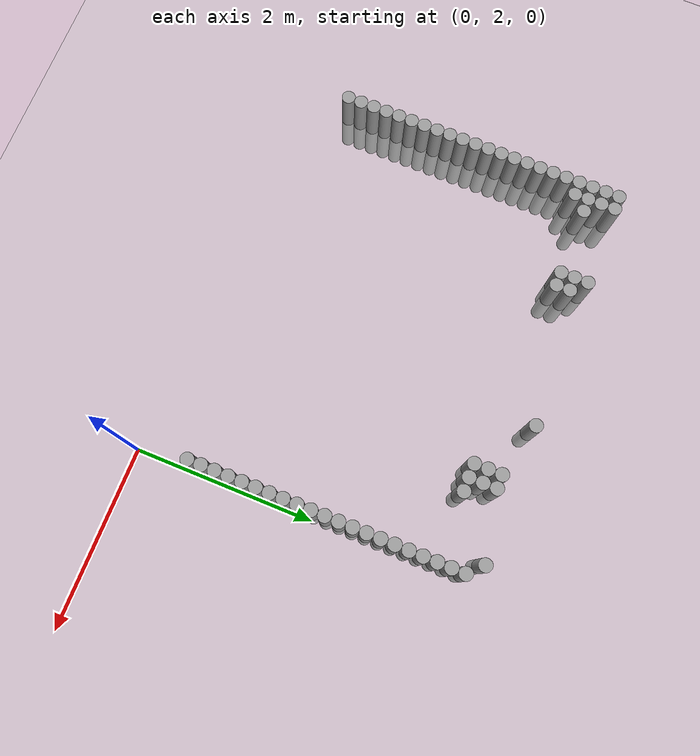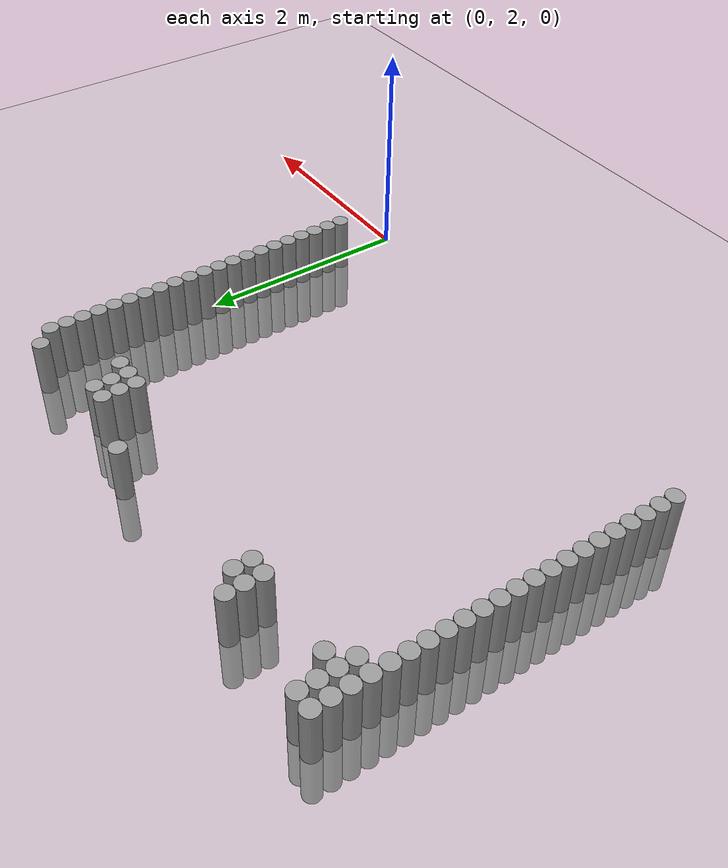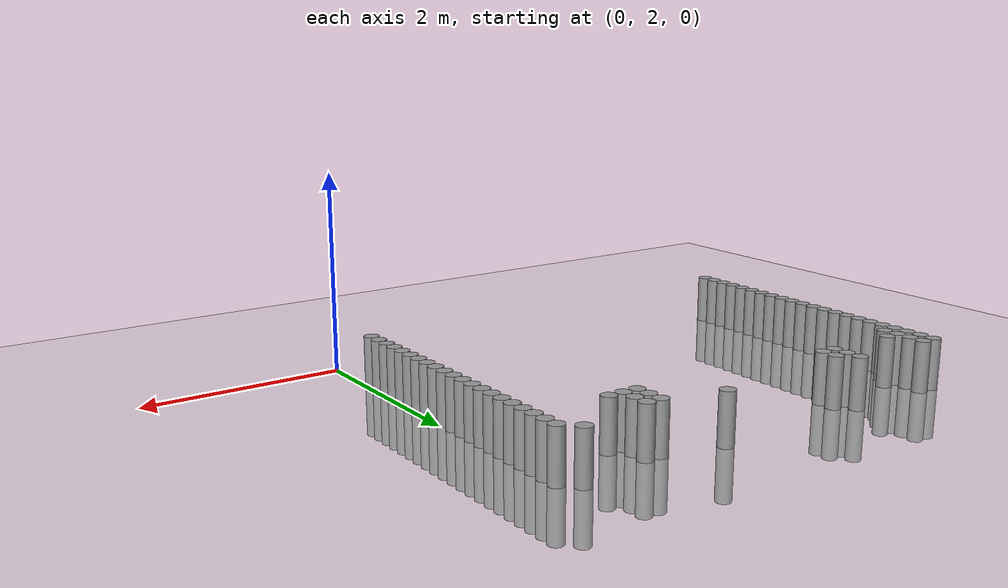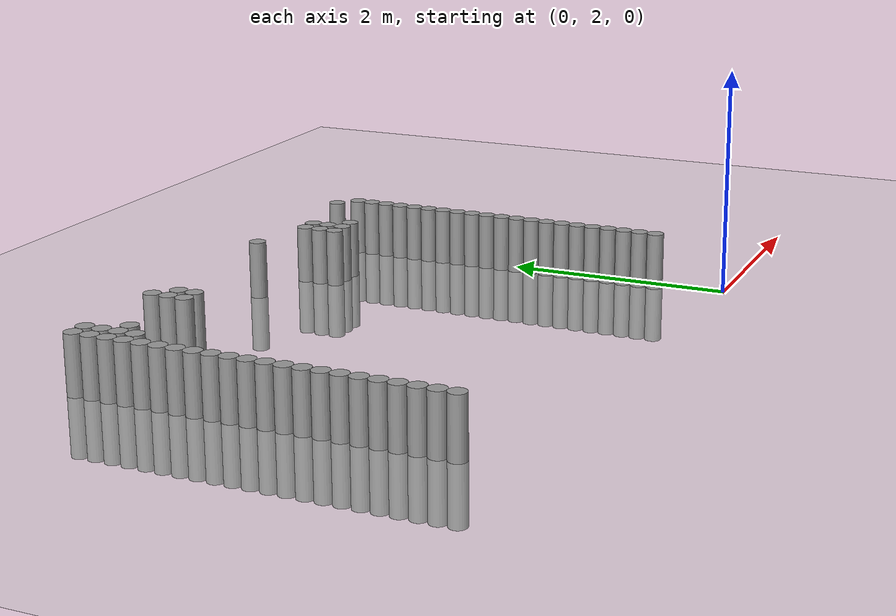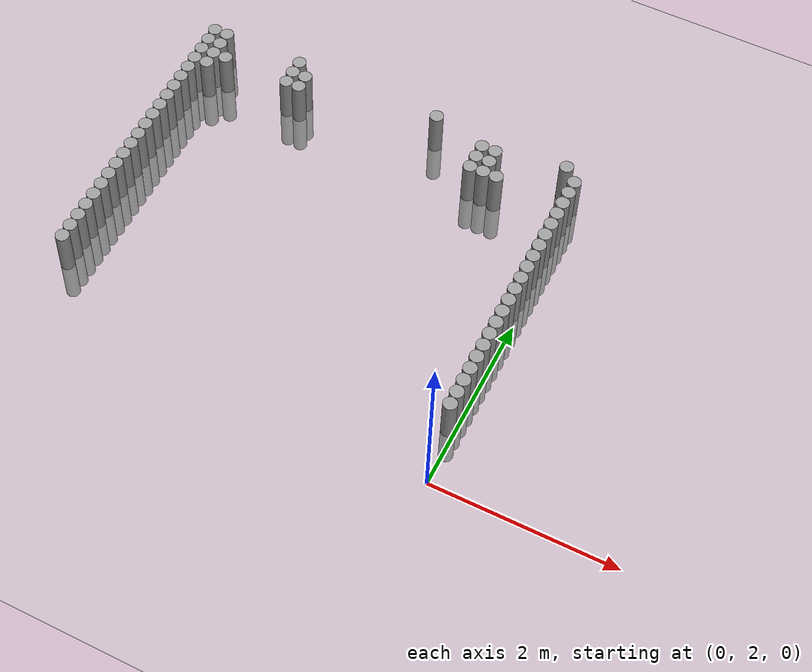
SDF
<sdf version="1.6">
 <world name="default">
  <model name="ground_plane">
   <static>1</static>
   <link name="link">
    <collision name="collision">
     <geometry><plane><normal>0 0 1</normal><size>100 100</size></plane></geometry>
     <surface><friction><ode><mu>100</mu><mu2>50</mu2></ode></friction></surface>
    </collision>
    <visual name="visual">
     <cast_shadows>0</cast_shadows>
     <geometry><plane><normal>0 0 1</normal><size>100 100</size></plane></geometry>
     <material>
      <script><uri>file://media/materials/scripts/gazebo.material</uri><name>Gazebo/Grey</name></script>
     </material>
    </visual>
   </link>
  </model>
  <model name="unit_cylinder_62">
   <pose>-0.075000 2.625000 0.000000 0.000000 0.000000 0.000000</pose>
   <link name="link">
    <inertial>
     <mass>1</mass>
     <inertia><ixx>0.145833</ixx><ixy>0</ixy><ixz>0</ixz><iyy>0.145833</iyy><iyz>0</iyz><izz>0.125</izz></inertia>
    </inertial>
    <collision name="collision">
     <geometry><cylinder><radius>0.075000</radius><length>1</length></cylinder></geometry>
    </collision>
    <visual name="visual">
     <geometry><cylinder><radius>0.075000</radius><length>1</length></cylinder></geometry>
     <material>
      <script><name>Gazebo/Grey</name><uri>file://media/materials/scripts/gazebo.material</uri></script>
     </material>
    </visual>
   </link>
  </model>
  <model name="unit_cylinder_63">
   <pose>-4.425000 2.625000 0.000000 0.000000 0.000000 0.000000</pose>
   <link name="link">
    <inertial>
     <mass>1</mass>
     <inertia><ixx>0.145833</ixx><ixy>0</ixy><ixz>0</ixz><iyy>0.145833</iyy><iyz>0</iyz><izz>0.125</izz></inertia>
    </inertial>
    <collision name="collision">
     <geometry><cylinder><radius>0.075000</radius><length>1</length></cylinder></geometry>
    </collision>
    <visual name="visual">
     <geometry><cylinder><radius>0.075000</radius><length>1</length></cylinder></geometry>
     <material>
      <script><name>Gazebo/Grey</name><uri>file://media/materials/scripts/gazebo.material</uri></script>
     </material>
    </visual>
   </link>
  </model>
  <model name="unit_cylinder_64">
   <pose>-0.075000 2.775000 0.000000 0.000000 0.000000 0.000000</pose>
   <link name="link">
    <inertial>
     <mass>1</mass>
     <inertia><ixx>0.145833</ixx><ixy>0</ixy><ixz>0</ixz><iyy>0.145833</iyy><iyz>0</iyz><izz>0.125</izz></inertia>
    </inertial>
    <collision name="collision">
     <geometry><cylinder><radius>0.075000</radius><length>1</length></cylinder></geometry>
    </collision>
    <visual name="visual">
     <geometry><cylinder><radius>0.075000</radius><length>1</length></cylinder></geometry>
     <material>
      <script><name>Gazebo/Grey</name><uri>file://media/materials/scripts/gazebo.material</uri></script>
     </material>
    </visual>
   </link>
  </model>
  <model name="unit_cylinder_65">
   <pose>-4.425000 2.775000 0.000000 0.000000 0.000000 0.000000</pose>
   <link name="link">
    <inertial>
     <mass>1</mass>
     <inertia><ixx>0.145833</ixx><ixy>0</ixy><ixz>0</ixz><iyy>0.145833</iyy><iyz>0</iyz><izz>0.125</izz></inertia>
    </inertial>
    <collision name="collision">
     <geometry><cylinder><radius>0.075000</radius><length>1</length></cylinder></geometry>
    </collision>
    <visual name="visual">
     <geometry><cylinder><radius>0.075000</radius><length>1</length></cylinder></geometry>
     <material>
      <script><name>Gazebo/Grey</name><uri>file://media/materials/scripts/gazebo.material</uri></script>
     </material>
    </visual>
   </link>
  </model>
  <model name="unit_cylinder_66">
   <pose>-0.075000 2.925000 0.000000 0.000000 0.000000 0.000000</pose>
   <link name="link">
    <inertial>
     <mass>1</mass>
     <inertia><ixx>0.145833</ixx><ixy>0</ixy><ixz>0</ixz><iyy>0.145833</iyy><iyz>0</iyz><izz>0.125</izz></inertia>
    </inertial>
    <collision name="collision">
     <geometry><cylinder><radius>0.075000</radius><length>1</length></cylinder></geometry>
    </collision>
    <visual name="visual">
     <geometry><cylinder><radius>0.075000</radius><length>1</length></cylinder></geometry>
     <material>
      <script><name>Gazebo/Grey</name><uri>file://media/materials/scripts/gazebo.material</uri></script>
     </material>
    </visual>
   </link>
  </model>
  <model name="unit_cylinder_67">
   <pose>-4.425000 2.925000 0.000000 0.000000 0.000000 0.000000</pose>
   <link name="link">
    <inertial>
     <mass>1</mass>
     <inertia><ixx>0.145833</ixx><ixy>0</ixy><ixz>0</ixz><iyy>0.145833</iyy><iyz>0</iyz><izz>0.125</izz></inertia>
    </inertial>
    <collision name="collision">
     <geometry><cylinder><radius>0.075000</radius><length>1</length></cylinder></geometry>
    </collision>
    <visual name="visual">
     <geometry><cylinder><radius>0.075000</radius><length>1</length></cylinder></geometry>
     <material>
      <script><name>Gazebo/Grey</name><uri>file://media/materials/scripts/gazebo.material</uri></script>
     </material>
    </visual>
   </link>
  </model>
  <model name="unit_cylinder_68">
   <pose>-0.075000 3.075000 0.000000 0.000000 0.000000 0.000000</pose>
   <link name="link">
    <inertial>
     <mass>1</mass>
     <inertia><ixx>0.145833</ixx><ixy>0</ixy><ixz>0</ixz><iyy>0.145833</iyy><iyz>0</iyz><izz>0.125</izz></inertia>
    </inertial>
    <collision name="collision">
     <geometry><cylinder><radius>0.075000</radius><length>1</length></cylinder></geometry>
    </collision>
    <visual name="visual">
     <geometry><cylinder><radius>0.075000</radius><length>1</length></cylinder></geometry>
     <material>
      <script><name>Gazebo/Grey</name><uri>file://media/materials/scripts/gazebo.material</uri></script>
     </material>
    </visual>
   </link>
  </model>
  <model name="unit_cylinder_69">
   <pose>-4.425000 3.075000 0.000000 0.000000 0.000000 0.000000</pose>
   <link name="link">
    <inertial>
     <mass>1</mass>
     <inertia><ixx>0.145833</ixx><ixy>0</ixy><ixz>0</ixz><iyy>0.145833</iyy><iyz>0</iyz><izz>0.125</izz></inertia>
    </inertial>
    <collision name="collision">
     <geometry><cylinder><radius>0.075000</radius><length>1</length></cylinder></geometry>
    </collision>
    <visual name="visual">
     <geometry><cylinder><radius>0.075000</radius><length>1</length></cylinder></geometry>
     <material>
      <script><name>Gazebo/Grey</name><uri>file://media/materials/scripts/gazebo.material</uri></script>
     </material>
    </visual>
   </link>
  </model>
  <model name="unit_cylinder_70">
   <pose>-0.075000 3.225000 0.000000 0.000000 0.000000 0.000000</pose>
   <link name="link">
    <inertial>
     <mass>1</mass>
     <inertia><ixx>0.145833</ixx><ixy>0</ixy><ixz>0</ixz><iyy>0.145833</iyy><iyz>0</iyz><izz>0.125</izz></inertia>
    </inertial>
    <collision name="collision">
     <geometry><cylinder><radius>0.075000</radius><length>1</length></cylinder></geometry>
    </collision>
    <visual name="visual">
     <geometry><cylinder><radius>0.075000</radius><length>1</length></cylinder></geometry>
     <material>
      <script><name>Gazebo/Grey</name><uri>file://media/materials/scripts/gazebo.material</uri></script>
     </material>
    </visual>
   </link>
  </model>
  <model name="unit_cylinder_71">
   <pose>-4.425000 3.225000 0.000000 0.000000 0.000000 0.000000</pose>
   <link name="link">
    <inertial>
     <mass>1</mass>
     <inertia><ixx>0.145833</ixx><ixy>0</ixy><ixz>0</ixz><iyy>0.145833</iyy><iyz>0</iyz><izz>0.125</izz></inertia>
    </inertial>
    <collision name="collision">
     <geometry><cylinder><radius>0.075000</radius><length>1</length></cylinder></geometry>
    </collision>
    <visual name="visual">
     <geometry><cylinder><radius>0.075000</radius><length>1</length></cylinder></geometry>
     <material>
      <script><name>Gazebo/Grey</name><uri>file://media/materials/scripts/gazebo.material</uri></script>
     </material>
    </visual>
   </link>
  </model>
  <model name="unit_cylinder_72">
   <pose>-0.075000 3.375000 0.000000 0.000000 0.000000 0.000000</pose>
   <link name="link">
    <inertial>
     <mass>1</mass>
     <inertia><ixx>0.145833</ixx><ixy>0</ixy><ixz>0</ixz><iyy>0.145833</iyy><iyz>0</iyz><izz>0.125</izz></inertia>
    </inertial>
    <collision name="collision">
     <geometry><cylinder><radius>0.075000</radius><length>1</length></cylinder></geometry>
    </collision>
    <visual name="visual">
     <geometry><cylinder><radius>0.075000</radius><length>1</length></cylinder></geometry>
     <material>
      <script><name>Gazebo/Grey</name><uri>file://media/materials/scripts/gazebo.material</uri></script>
     </material>
    </visual>
   </link>
  </model>
  <model name="unit_cylinder_73">
   <pose>-4.425000 3.375000 0.000000 0.000000 0.000000 0.000000</pose>
   <link name="link">
    <inertial>
     <mass>1</mass>
     <inertia><ixx>0.145833</ixx><ixy>0</ixy><ixz>0</ixz><iyy>0.145833</iyy><iyz>0</iyz><izz>0.125</izz></inertia>
    </inertial>
    <collision name="collision">
     <geometry><cylinder><radius>0.075000</radius><length>1</length></cylinder></geometry>
    </collision>
    <visual name="visual">
     <geometry><cylinder><radius>0.075000</radius><length>1</length></cylinder></geometry>
     <material>
      <script><name>Gazebo/Grey</name><uri>file://media/materials/scripts/gazebo.material</uri></script>
     </material>
    </visual>
   </link>
  </model>
  <model name="unit_cylinder_74">
   <pose>-0.075000 3.525000 0.000000 0.000000 0.000000 0.000000</pose>
   <link name="link">
    <inertial>
     <mass>1</mass>
     <inertia><ixx>0.145833</ixx><ixy>0</ixy><ixz>0</ixz><iyy>0.145833</iyy><iyz>0</iyz><izz>0.125</izz></inertia>
    </inertial>
    <collision name="collision">
     <geometry><cylinder><radius>0.075000</radius><length>1</length></cylinder></geometry>
    </collision>
    <visual name="visual">
     <geometry><cylinder><radius>0.075000</radius><length>1</length></cylinder></geometry>
     <material>
      <script><name>Gazebo/Grey</name><uri>file://media/materials/scripts/gazebo.material</uri></script>
     </material>
    </visual>
   </link>
  </model>
  <model name="unit_cylinder_75">
   <pose>-4.425000 3.525000 0.000000 0.000000 0.000000 0.000000</pose>
   <link name="link">
    <inertial>
     <mass>1</mass>
     <inertia><ixx>0.145833</ixx><ixy>0</ixy><ixz>0</ixz><iyy>0.145833</iyy><iyz>0</iyz><izz>0.125</izz></inertia>
    </inertial>
    <collision name="collision">
     <geometry><cylinder><radius>0.075000</radius><length>1</length></cylinder></geometry>
    </collision>
    <visual name="visual">
     <geometry><cylinder><radius>0.075000</radius><length>1</length></cylinder></geometry>
     <material>
      <script><name>Gazebo/Grey</name><uri>file://media/materials/scripts/gazebo.material</uri></script>
     </material>
    </visual>
   </link>
  </model>
  <model name="unit_cylinder_76">
   <pose>-0.075000 3.675000 0.000000 0.000000 0.000000 0.000000</pose>
   <link name="link">
    <inertial>
     <mass>1</mass>
     <inertia><ixx>0.145833</ixx><ixy>0</ixy><ixz>0</ixz><iyy>0.145833</iyy><iyz>0</iyz><izz>0.125</izz></inertia>
    </inertial>
    <collision name="collision">
     <geometry><cylinder><radius>0.075000</radius><length>1</length></cylinder></geometry>
    </collision>
    <visual name="visual">
     <geometry><cylinder><radius>0.075000</radius><length>1</length></cylinder></geometry>
     <material>
      <script><name>Gazebo/Grey</name><uri>file://media/materials/scripts/gazebo.material</uri></script>
     </material>
    </visual>
   </link>
  </model>
  <model name="unit_cylinder_77">
   <pose>-4.425000 3.675000 0.000000 0.000000 0.000000 0.000000</pose>
   <link name="link">
    <inertial>
     <mass>1</mass>
     <inertia><ixx>0.145833</ixx><ixy>0</ixy><ixz>0</ixz><iyy>0.145833</iyy><iyz>0</iyz><izz>0.125</izz></inertia>
    </inertial>
    <collision name="collision">
     <geometry><cylinder><radius>0.075000</radius><length>1</length></cylinder></geometry>
    </collision>
    <visual name="visual">
     <geometry><cylinder><radius>0.075000</radius><length>1</length></cylinder></geometry>
     <material>
      <script><name>Gazebo/Grey</name><uri>file://media/materials/scripts/gazebo.material</uri></script>
     </material>
    </visual>
   </link>
  </model>
  <model name="unit_cylinder_78">
   <pose>-0.075000 3.825000 0.000000 0.000000 0.000000 0.000000</pose>
   <link name="link">
    <inertial>
     <mass>1</mass>
     <inertia><ixx>0.145833</ixx><ixy>0</ixy><ixz>0</ixz><iyy>0.145833</iyy><iyz>0</iyz><izz>0.125</izz></inertia>
    </inertial>
    <collision name="collision">
     <geometry><cylinder><radius>0.075000</radius><length>1</length></cylinder></geometry>
    </collision>
    <visual name="visual">
     <geometry><cylinder><radius>0.075000</radius><length>1</length></cylinder></geometry>
     <material>
      <script><name>Gazebo/Grey</name><uri>file://media/materials/scripts/gazebo.material</uri></script>
     </material>
    </visual>
   </link>
  </model>
  <model name="unit_cylinder_79">
   <pose>-4.425000 3.825000 0.000000 0.000000 0.000000 0.000000</pose>
   <link name="link">
    <inertial>
     <mass>1</mass>
     <inertia><ixx>0.145833</ixx><ixy>0</ixy><ixz>0</ixz><iyy>0.145833</iyy><iyz>0</iyz><izz>0.125</izz></inertia>
    </inertial>
    <collision name="collision">
     <geometry><cylinder><radius>0.075000</radius><length>1</length></cylinder></geometry>
    </collision>
    <visual name="visual">
     <geometry><cylinder><radius>0.075000</radius><length>1</length></cylinder></geometry>
     <material>
      <script><name>Gazebo/Grey</name><uri>file://media/materials/scripts/gazebo.material</uri></script>
     </material>
    </visual>
   </link>
  </model>
  <model name="unit_cylinder_80">
   <pose>-0.075000 3.975000 0.000000 0.000000 0.000000 0.000000</pose>
   <link name="link">
    <inertial>
     <mass>1</mass>
     <inertia><ixx>0.145833</ixx><ixy>0</ixy><ixz>0</ixz><iyy>0.145833</iyy><iyz>0</iyz><izz>0.125</izz></inertia>
    </inertial>
    <collision name="collision">
     <geometry><cylinder><radius>0.075000</radius><length>1</length></cylinder></geometry>
    </collision>
    <visual name="visual">
     <geometry><cylinder><radius>0.075000</radius><length>1</length></cylinder></geometry>
     <material>
      <script><name>Gazebo/Grey</name><uri>file://media/materials/scripts/gazebo.material</uri></script>
     </material>
    </visual>
   </link>
  </model>
  <model name="unit_cylinder_81">
   <pose>-4.425000 3.975000 0.000000 0.000000 0.000000 0.000000</pose>
   <link name="link">
    <inertial>
     <mass>1</mass>
     <inertia><ixx>0.145833</ixx><ixy>0</ixy><ixz>0</ixz><iyy>0.145833</iyy><iyz>0</iyz><izz>0.125</izz></inertia>
    </inertial>
    <collision name="collision">
     <geometry><cylinder><radius>0.075000</radius><length>1</length></cylinder></geometry>
    </collision>
    <visual name="visual">
     <geometry><cylinder><radius>0.075000</radius><length>1</length></cylinder></geometry>
     <material>
      <script><name>Gazebo/Grey</name><uri>file://media/materials/scripts/gazebo.material</uri></script>
     </material>
    </visual>
   </link>
  </model>
  <model name="unit_cylinder_82">
   <pose>-0.075000 4.125000 0.000000 0.000000 0.000000 0.000000</pose>
   <link name="link">
    <inertial>
     <mass>1</mass>
     <inertia><ixx>0.145833</ixx><ixy>0</ixy><ixz>0</ixz><iyy>0.145833</iyy><iyz>0</iyz><izz>0.125</izz></inertia>
    </inertial>
    <collision name="collision">
     <geometry><cylinder><radius>0.075000</radius><length>1</length></cylinder></geometry>
    </collision>
    <visual name="visual">
     <geometry><cylinder><radius>0.075000</radius><length>1</length></cylinder></geometry>
     <material>
      <script><name>Gazebo/Grey</name><uri>file://media/materials/scripts/gazebo.material</uri></script>
     </material>
    </visual>
   </link>
  </model>
  <model name="unit_cylinder_83">
   <pose>-4.425000 4.125000 0.000000 0.000000 0.000000 0.000000</pose>
   <link name="link">
    <inertial>
     <mass>1</mass>
     <inertia><ixx>0.145833</ixx><ixy>0</ixy><ixz>0</ixz><iyy>0.145833</iyy><iyz>0</iyz><izz>0.125</izz></inertia>
    </inertial>
    <collision name="collision">
     <geometry><cylinder><radius>0.075000</radius><length>1</length></cylinder></geometry>
    </collision>
    <visual name="visual">
     <geometry><cylinder><radius>0.075000</radius><length>1</length></cylinder></geometry>
     <material>
      <script><name>Gazebo/Grey</name><uri>file://media/materials/scripts/gazebo.material</uri></script>
     </material>
    </visual>
   </link>
  </model>
  <model name="unit_cylinder_84">
   <pose>-0.075000 4.275000 0.000000 0.000000 0.000000 0.000000</pose>
   <link name="link">
    <inertial>
     <mass>1</mass>
     <inertia><ixx>0.145833</ixx><ixy>0</ixy><ixz>0</ixz><iyy>0.145833</iyy><iyz>0</iyz><izz>0.125</izz></inertia>
    </inertial>
    <collision name="collision">
     <geometry><cylinder><radius>0.075000</radius><length>1</length></cylinder></geometry>
    </collision>
    <visual name="visual">
     <geometry><cylinder><radius>0.075000</radius><length>1</length></cylinder></geometry>
     <material>
      <script><name>Gazebo/Grey</name><uri>file://media/materials/scripts/gazebo.material</uri></script>
     </material>
    </visual>
   </link>
  </model>
  <model name="unit_cylinder_85">
   <pose>-4.425000 4.275000 0.000000 0.000000 0.000000 0.000000</pose>
   <link name="link">
    <inertial>
     <mass>1</mass>
     <inertia><ixx>0.145833</ixx><ixy>0</ixy><ixz>0</ixz><iyy>0.145833</iyy><iyz>0</iyz><izz>0.125</izz></inertia>
    </inertial>
    <collision name="collision">
     <geometry><cylinder><radius>0.075000</radius><length>1</length></cylinder></geometry>
    </collision>
    <visual name="visual">
     <geometry><cylinder><radius>0.075000</radius><length>1</length></cylinder></geometry>
     <material>
      <script><name>Gazebo/Grey</name><uri>file://media/materials/scripts/gazebo.material</uri></script>
     </material>
    </visual>
   </link>
  </model>
  <model name="unit_cylinder_86">
   <pose>-0.075000 4.425000 0.000000 0.000000 0.000000 0.000000</pose>
   <link name="link">
    <inertial>
     <mass>1</mass>
     <inertia><ixx>0.145833</ixx><ixy>0</ixy><ixz>0</ixz><iyy>0.145833</iyy><iyz>0</iyz><izz>0.125</izz></inertia>
    </inertial>
    <collision name="collision">
     <geometry><cylinder><radius>0.075000</radius><length>1</length></cylinder></geometry>
    </collision>
    <visual name="visual">
     <geometry><cylinder><radius>0.075000</radius><length>1</length></cylinder></geometry>
     <material>
      <script><name>Gazebo/Grey</name><uri>file://media/materials/scripts/gazebo.material</uri></script>
     </material>
    </visual>
   </link>
  </model>
  <model name="unit_cylinder_87">
   <pose>-4.425000 4.425000 0.000000 0.000000 0.000000 0.000000</pose>
   <link name="link">
    <inertial>
     <mass>1</mass>
     <inertia><ixx>0.145833</ixx><ixy>0</ixy><ixz>0</ixz><iyy>0.145833</iyy><iyz>0</iyz><izz>0.125</izz></inertia>
    </inertial>
    <collision name="collision">
     <geometry><cylinder><radius>0.075000</radius><length>1</length></cylinder></geometry>
    </collision>
    <visual name="visual">
     <geometry><cylinder><radius>0.075000</radius><length>1</length></cylinder></geometry>
     <material>
      <script><name>Gazebo/Grey</name><uri>file://media/materials/scripts/gazebo.material</uri></script>
     </material>
    </visual>
   </link>
  </model>
  <model name="unit_cylinder_88">
   <pose>-0.075000 4.575000 0.000000 0.000000 0.000000 0.000000</pose>
   <link name="link">
    <inertial>
     <mass>1</mass>
     <inertia><ixx>0.145833</ixx><ixy>0</ixy><ixz>0</ixz><iyy>0.145833</iyy><iyz>0</iyz><izz>0.125</izz></inertia>
    </inertial>
    <collision name="collision">
     <geometry><cylinder><radius>0.075000</radius><length>1</length></cylinder></geometry>
    </collision>
    <visual name="visual">
     <geometry><cylinder><radius>0.075000</radius><length>1</length></cylinder></geometry>
     <material>
      <script><name>Gazebo/Grey</name><uri>file://media/materials/scripts/gazebo.material</uri></script>
     </material>
    </visual>
   </link>
  </model>
  <model name="unit_cylinder_89">
   <pose>-4.425000 4.575000 0.000000 0.000000 0.000000 0.000000</pose>
   <link name="link">
    <inertial>
     <mass>1</mass>
     <inertia><ixx>0.145833</ixx><ixy>0</ixy><ixz>0</ixz><iyy>0.145833</iyy><iyz>0</iyz><izz>0.125</izz></inertia>
    </inertial>
    <collision name="collision">
     <geometry><cylinder><radius>0.075000</radius><length>1</length></cylinder></geometry>
    </collision>
    <visual name="visual">
     <geometry><cylinder><radius>0.075000</radius><length>1</length></cylinder></geometry>
     <material>
      <script><name>Gazebo/Grey</name><uri>file://media/materials/scripts/gazebo.material</uri></script>
     </material>
    </visual>
   </link>
  </model>
  <model name="unit_cylinder_90">
   <pose>-0.075000 4.725000 0.000000 0.000000 0.000000 0.000000</pose>
   <link name="link">
    <inertial>
     <mass>1</mass>
     <inertia><ixx>0.145833</ixx><ixy>0</ixy><ixz>0</ixz><iyy>0.145833</iyy><iyz>0</iyz><izz>0.125</izz></inertia>
    </inertial>
    <collision name="collision">
     <geometry><cylinder><radius>0.075000</radius><length>1</length></cylinder></geometry>
    </collision>
    <visual name="visual">
     <geometry><cylinder><radius>0.075000</radius><length>1</length></cylinder></geometry>
     <material>
      <script><name>Gazebo/Grey</name><uri>file://media/materials/scripts/gazebo.material</uri></script>
     </material>
    </visual>
   </link>
  </model>
  <model name="unit_cylinder_91">
   <pose>-4.425000 4.725000 0.000000 0.000000 0.000000 0.000000</pose>
   <link name="link">
    <inertial>
     <mass>1</mass>
     <inertia><ixx>0.145833</ixx><ixy>0</ixy><ixz>0</ixz><iyy>0.145833</iyy><iyz>0</iyz><izz>0.125</izz></inertia>
    </inertial>
    <collision name="collision">
     <geometry><cylinder><radius>0.075000</radius><length>1</length></cylinder></geometry>
    </collision>
    <visual name="visual">
     <geometry><cylinder><radius>0.075000</radius><length>1</length></cylinder></geometry>
     <material>
      <script><name>Gazebo/Grey</name><uri>file://media/materials/scripts/gazebo.material</uri></script>
     </material>
    </visual>
   </link>
  </model>
  <model name="unit_cylinder_92">
   <pose>-0.075000 4.875000 0.000000 0.000000 0.000000 0.000000</pose>
   <link name="link">
    <inertial>
     <mass>1</mass>
     <inertia><ixx>0.145833</ixx><ixy>0</ixy><ixz>0</ixz><iyy>0.145833</iyy><iyz>0</iyz><izz>0.125</izz></inertia>
    </inertial>
    <collision name="collision">
     <geometry><cylinder><radius>0.075000</radius><length>1</length></cylinder></geometry>
    </collision>
    <visual name="visual">
     <geometry><cylinder><radius>0.075000</radius><length>1</length></cylinder></geometry>
     <material>
      <script><name>Gazebo/Grey</name><uri>file://media/materials/scripts/gazebo.material</uri></script>
     </material>
    </visual>
   </link>
  </model>
  <model name="unit_cylinder_93">
   <pose>-4.425000 4.875000 0.000000 0.000000 0.000000 0.000000</pose>
   <link name="link">
    <inertial>
     <mass>1</mass>
     <inertia><ixx>0.145833</ixx><ixy>0</ixy><ixz>0</ixz><iyy>0.145833</iyy><iyz>0</iyz><izz>0.125</izz></inertia>
    </inertial>
    <collision name="collision">
     <geometry><cylinder><radius>0.075000</radius><length>1</length></cylinder></geometry>
    </collision>
    <visual name="visual">
     <geometry><cylinder><radius>0.075000</radius><length>1</length></cylinder></geometry>
     <material>
      <script><name>Gazebo/Grey</name><uri>file://media/materials/scripts/gazebo.material</uri></script>
     </material>
    </visual>
   </link>
  </model>
  <model name="unit_cylinder_94">
   <pose>-0.075000 5.025000 0.000000 0.000000 0.000000 0.000000</pose>
   <link name="link">
    <inertial>
     <mass>1</mass>
     <inertia><ixx>0.145833</ixx><ixy>0</ixy><ixz>0</ixz><iyy>0.145833</iyy><iyz>0</iyz><izz>0.125</izz></inertia>
    </inertial>
    <collision name="collision">
     <geometry><cylinder><radius>0.075000</radius><length>1</length></cylinder></geometry>
    </collision>
    <visual name="visual">
     <geometry><cylinder><radius>0.075000</radius><length>1</length></cylinder></geometry>
     <material>
      <script><name>Gazebo/Grey</name><uri>file://media/materials/scripts/gazebo.material</uri></script>
     </material>
    </visual>
   </link>
  </model>
  <model name="unit_cylinder_95">
   <pose>-4.425000 5.025000 0.000000 0.000000 0.000000 0.000000</pose>
   <link name="link">
    <inertial>
     <mass>1</mass>
     <inertia><ixx>0.145833</ixx><ixy>0</ixy><ixz>0</ixz><iyy>0.145833</iyy><iyz>0</iyz><izz>0.125</izz></inertia>
    </inertial>
    <collision name="collision">
     <geometry><cylinder><radius>0.075000</radius><length>1</length></cylinder></geometry>
    </collision>
    <visual name="visual">
     <geometry><cylinder><radius>0.075000</radius><length>1</length></cylinder></geometry>
     <material>
      <script><name>Gazebo/Grey</name><uri>file://media/materials/scripts/gazebo.material</uri></script>
     </material>
    </visual>
   </link>
  </model>
  <model name="unit_cylinder_96">
   <pose>-4.425000 5.175000 0.000000 0.000000 0.000000 0.000000</pose>
   <link name="link">
    <inertial>
     <mass>1</mass>
     <inertia><ixx>0.145833</ixx><ixy>0</ixy><ixz>0</ixz><iyy>0.145833</iyy><iyz>0</iyz><izz>0.125</izz></inertia>
    </inertial>
    <collision name="collision">
     <geometry><cylinder><radius>0.075000</radius><length>1</length></cylinder></geometry>
    </collision>
    <visual name="visual">
     <geometry><cylinder><radius>0.075000</radius><length>1</length></cylinder></geometry>
     <material>
      <script><name>Gazebo/Grey</name><uri>file://media/materials/scripts/gazebo.material</uri></script>
     </material>
    </visual>
   </link>
  </model>
  <model name="unit_cylinder_97">
   <pose>-4.425000 5.325000 0.000000 0.000000 0.000000 0.000000</pose>
   <link name="link">
    <inertial>
     <mass>1</mass>
     <inertia><ixx>0.145833</ixx><ixy>0</ixy><ixz>0</ixz><iyy>0.145833</iyy><iyz>0</iyz><izz>0.125</izz></inertia>
    </inertial>
    <collision name="collision">
     <geometry><cylinder><radius>0.075000</radius><length>1</length></cylinder></geometry>
    </collision>
    <visual name="visual">
     <geometry><cylinder><radius>0.075000</radius><length>1</length></cylinder></geometry>
     <material>
      <script><name>Gazebo/Grey</name><uri>file://media/materials/scripts/gazebo.material</uri></script>
     </material>
    </visual>
   </link>
  </model>
  <model name="unit_cylinder_98">
   <pose>-4.425000 5.475000 0.000000 0.000000 0.000000 0.000000</pose>
   <link name="link">
    <inertial>
     <mass>1</mass>
     <inertia><ixx>0.145833</ixx><ixy>0</ixy><ixz>0</ixz><iyy>0.145833</iyy><iyz>0</iyz><izz>0.125</izz></inertia>
    </inertial>
    <collision name="collision">
     <geometry><cylinder><radius>0.075000</radius><length>1</length></cylinder></geometry>
    </collision>
    <visual name="visual">
     <geometry><cylinder><radius>0.075000</radius><length>1</length></cylinder></geometry>
     <material>
      <script><name>Gazebo/Grey</name><uri>file://media/materials/scripts/gazebo.material</uri></script>
     </material>
    </visual>
   </link>
  </model>
  <model name="unit_cylinder_99">
   <pose>-4.425000 5.625000 0.000000 0.000000 0.000000 0.000000</pose>
   <link name="link">
    <inertial>
     <mass>1</mass>
     <inertia><ixx>0.145833</ixx><ixy>0</ixy><ixz>0</ixz><iyy>0.145833</iyy><iyz>0</iyz><izz>0.125</izz></inertia>
    </inertial>
    <collision name="collision">
     <geometry><cylinder><radius>0.075000</radius><length>1</length></cylinder></geometry>
    </collision>
    <visual name="visual">
     <geometry><cylinder><radius>0.075000</radius><length>1</length></cylinder></geometry>
     <material>
      <script><name>Gazebo/Grey</name><uri>file://media/materials/scripts/gazebo.material</uri></script>
     </material>
    </visual>
   </link>
  </model>
  <model name="unit_cylinder_100">
   <pose>-4.425000 5.775000 0.000000 0.000000 0.000000 0.000000</pose>
   <link name="link">
    <inertial>
     <mass>1</mass>
     <inertia><ixx>0.145833</ixx><ixy>0</ixy><ixz>0</ixz><iyy>0.145833</iyy><iyz>0</iyz><izz>0.125</izz></inertia>
    </inertial>
    <collision name="collision">
     <geometry><cylinder><radius>0.075000</radius><length>1</length></cylinder></geometry>
    </collision>
    <visual name="visual">
     <geometry><cylinder><radius>0.075000</radius><length>1</length></cylinder></geometry>
     <material>
      <script><name>Gazebo/Grey</name><uri>file://media/materials/scripts/gazebo.material</uri></script>
     </material>
    </visual>
   </link>
  </model>
  <model name="unit_cylinder_126">
   <pose>-4.275000 5.325000 0.000000 0.000000 0.000000 0.000000</pose>
   <link name="link">
    <inertial>
     <mass>1</mass>
     <inertia><ixx>0.145833</ixx><ixy>0</ixy><ixz>0</ixz><iyy>0.145833</iyy><iyz>0</iyz><izz>0.125</izz></inertia>
    </inertial>
    <collision name="collision">
     <geometry><cylinder><radius>0.075000</radius><length>1</length></cylinder></geometry>
    </collision>
    <visual name="visual">
     <geometry><cylinder><radius>0.075000</radius><length>1</length></cylinder></geometry>
     <material>
      <script><name>Gazebo/Grey</name><uri>file://media/materials/scripts/gazebo.material</uri></script>
     </material>
    </visual>
   </link>
  </model>
  <model name="unit_cylinder_127">
   <pose>-4.275000 5.475000 0.000000 0.000000 0.000000 0.000000</pose>
   <link name="link">
    <inertial>
     <mass>1</mass>
     <inertia><ixx>0.145833</ixx><ixy>0</ixy><ixz>0</ixz><iyy>0.145833</iyy><iyz>0</iyz><izz>0.125</izz></inertia>
    </inertial>
    <collision name="collision">
     <geometry><cylinder><radius>0.075000</radius><length>1</length></cylinder></geometry>
    </collision>
    <visual name="visual">
     <geometry><cylinder><radius>0.075000</radius><length>1</length></cylinder></geometry>
     <material>
      <script><name>Gazebo/Grey</name><uri>file://media/materials/scripts/gazebo.material</uri></script>
     </material>
    </visual>
   </link>
  </model>
  <model name="unit_cylinder_128">
   <pose>-4.275000 5.625000 0.000000 0.000000 0.000000 0.000000</pose>
   <link name="link">
    <inertial>
     <mass>1</mass>
     <inertia><ixx>0.145833</ixx><ixy>0</ixy><ixz>0</ixz><iyy>0.145833</iyy><iyz>0</iyz><izz>0.125</izz></inertia>
    </inertial>
    <collision name="collision">
     <geometry><cylinder><radius>0.075000</radius><length>1</length></cylinder></geometry>
    </collision>
    <visual name="visual">
     <geometry><cylinder><radius>0.075000</radius><length>1</length></cylinder></geometry>
     <material>
      <script><name>Gazebo/Grey</name><uri>file://media/materials/scripts/gazebo.material</uri></script>
     </material>
    </visual>
   </link>
  </model>
  <model name="unit_cylinder_129">
   <pose>-4.275000 5.775000 0.000000 0.000000 0.000000 0.000000</pose>
   <link name="link">
    <inertial>
     <mass>1</mass>
     <inertia><ixx>0.145833</ixx><ixy>0</ixy><ixz>0</ixz><iyy>0.145833</iyy><iyz>0</iyz><izz>0.125</izz></inertia>
    </inertial>
    <collision name="collision">
     <geometry><cylinder><radius>0.075000</radius><length>1</length></cylinder></geometry>
    </collision>
    <visual name="visual">
     <geometry><cylinder><radius>0.075000</radius><length>1</length></cylinder></geometry>
     <material>
      <script><name>Gazebo/Grey</name><uri>file://media/materials/scripts/gazebo.material</uri></script>
     </material>
    </visual>
   </link>
  </model>
  <model name="unit_cylinder_143">
   <pose>-4.125000 5.475000 0.000000 0.000000 0.000000 0.000000</pose>
   <link name="link">
    <inertial>
     <mass>1</mass>
     <inertia><ixx>0.145833</ixx><ixy>0</ixy><ixz>0</ixz><iyy>0.145833</iyy><iyz>0</iyz><izz>0.125</izz></inertia>
    </inertial>
    <collision name="collision">
     <geometry><cylinder><radius>0.075000</radius><length>1</length></cylinder></geometry>
    </collision>
    <visual name="visual">
     <geometry><cylinder><radius>0.075000</radius><length>1</length></cylinder></geometry>
     <material>
      <script><name>Gazebo/Grey</name><uri>file://media/materials/scripts/gazebo.material</uri></script>
     </material>
    </visual>
   </link>
  </model>
  <model name="unit_cylinder_171">
   <pose>-3.375000 5.475000 0.000000 0.000000 0.000000 0.000000</pose>
   <link name="link">
    <inertial>
     <mass>1</mass>
     <inertia><ixx>0.145833</ixx><ixy>0</ixy><ixz>0</ixz><iyy>0.145833</iyy><iyz>0</iyz><izz>0.125</izz></inertia>
    </inertial>
    <collision name="collision">
     <geometry><cylinder><radius>0.075000</radius><length>1</length></cylinder></geometry>
    </collision>
    <visual name="visual">
     <geometry><cylinder><radius>0.075000</radius><length>1</length></cylinder></geometry>
     <material>
      <script><name>Gazebo/Grey</name><uri>file://media/materials/scripts/gazebo.material</uri></script>
     </material>
    </visual>
   </link>
  </model>
  <model name="unit_cylinder_172">
   <pose>-3.375000 5.625000 0.000000 0.000000 0.000000 0.000000</pose>
   <link name="link">
    <inertial>
     <mass>1</mass>
     <inertia><ixx>0.145833</ixx><ixy>0</ixy><ixz>0</ixz><iyy>0.145833</iyy><iyz>0</iyz><izz>0.125</izz></inertia>
    </inertial>
    <collision name="collision">
     <geometry><cylinder><radius>0.075000</radius><length>1</length></cylinder></geometry>
    </collision>
    <visual name="visual">
     <geometry><cylinder><radius>0.075000</radius><length>1</length></cylinder></geometry>
     <material>
      <script><name>Gazebo/Grey</name><uri>file://media/materials/scripts/gazebo.material</uri></script>
     </material>
    </visual>
   </link>
  </model>
  <model name="unit_cylinder_173">
   <pose>-3.375000 5.775000 0.000000 0.000000 0.000000 0.000000</pose>
   <link name="link">
    <inertial>
     <mass>1</mass>
     <inertia><ixx>0.145833</ixx><ixy>0</ixy><ixz>0</ixz><iyy>0.145833</iyy><iyz>0</iyz><izz>0.125</izz></inertia>
    </inertial>
    <collision name="collision">
     <geometry><cylinder><radius>0.075000</radius><length>1</length></cylinder></geometry>
    </collision>
    <visual name="visual">
     <geometry><cylinder><radius>0.075000</radius><length>1</length></cylinder></geometry>
     <material>
      <script><name>Gazebo/Grey</name><uri>file://media/materials/scripts/gazebo.material</uri></script>
     </material>
    </visual>
   </link>
  </model>
  <model name="unit_cylinder_180">
   <pose>-3.225000 5.475000 0.000000 0.000000 0.000000 0.000000</pose>
   <link name="link">
    <inertial>
     <mass>1</mass>
     <inertia><ixx>0.145833</ixx><ixy>0</ixy><ixz>0</ixz><iyy>0.145833</iyy><iyz>0</iyz><izz>0.125</izz></inertia>
    </inertial>
    <collision name="collision">
     <geometry><cylinder><radius>0.075000</radius><length>1</length></cylinder></geometry>
    </collision>
    <visual name="visual">
     <geometry><cylinder><radius>0.075000</radius><length>1</length></cylinder></geometry>
     <material>
      <script><name>Gazebo/Grey</name><uri>file://media/materials/scripts/gazebo.material</uri></script>
     </material>
    </visual>
   </link>
  </model>
  <model name="unit_cylinder_181">
   <pose>-3.225000 5.625000 0.000000 0.000000 0.000000 0.000000</pose>
   <link name="link">
    <inertial>
     <mass>1</mass>
     <inertia><ixx>0.145833</ixx><ixy>0</ixy><ixz>0</ixz><iyy>0.145833</iyy><iyz>0</iyz><izz>0.125</izz></inertia>
    </inertial>
    <collision name="collision">
     <geometry><cylinder><radius>0.075000</radius><length>1</length></cylinder></geometry>
    </collision>
    <visual name="visual">
     <geometry><cylinder><radius>0.075000</radius><length>1</length></cylinder></geometry>
     <material>
      <script><name>Gazebo/Grey</name><uri>file://media/materials/scripts/gazebo.material</uri></script>
     </material>
    </visual>
   </link>
  </model>
  <model name="unit_cylinder_203">
   <pose>-1.725000 5.775000 0.000000 0.000000 0.000000 0.000000</pose>
   <link name="link">
    <inertial>
     <mass>1</mass>
     <inertia><ixx>0.145833</ixx><ixy>0</ixy><ixz>0</ixz><iyy>0.145833</iyy><iyz>0</iyz><izz>0.125</izz></inertia>
    </inertial>
    <collision name="collision">
     <geometry><cylinder><radius>0.075000</radius><length>1</length></cylinder></geometry>
    </collision>
    <visual name="visual">
     <geometry><cylinder><radius>0.075000</radius><length>1</length></cylinder></geometry>
     <material>
      <script><name>Gazebo/Grey</name><uri>file://media/materials/scripts/gazebo.material</uri></script>
     </material>
    </visual>
   </link>
  </model>
  <model name="unit_cylinder_235">
   <pose>-1.125000 5.325000 0.000000 0.000000 0.000000 0.000000</pose>
   <link name="link">
    <inertial>
     <mass>1</mass>
     <inertia><ixx>0.145833</ixx><ixy>0</ixy><ixz>0</ixz><iyy>0.145833</iyy><iyz>0</iyz><izz>0.125</izz></inertia>
    </inertial>
    <collision name="collision">
     <geometry><cylinder><radius>0.075000</radius><length>1</length></cylinder></geometry>
    </collision>
    <visual name="visual">
     <geometry><cylinder><radius>0.075000</radius><length>1</length></cylinder></geometry>
     <material>
      <script><name>Gazebo/Grey</name><uri>file://media/materials/scripts/gazebo.material</uri></script>
     </material>
    </visual>
   </link>
  </model>
  <model name="unit_cylinder_236">
   <pose>-1.125000 5.475000 0.000000 0.000000 0.000000 0.000000</pose>
   <link name="link">
    <inertial>
     <mass>1</mass>
     <inertia><ixx>0.145833</ixx><ixy>0</ixy><ixz>0</ixz><iyy>0.145833</iyy><iyz>0</iyz><izz>0.125</izz></inertia>
    </inertial>
    <collision name="collision">
     <geometry><cylinder><radius>0.075000</radius><length>1</length></cylinder></geometry>
    </collision>
    <visual name="visual">
     <geometry><cylinder><radius>0.075000</radius><length>1</length></cylinder></geometry>
     <material>
      <script><name>Gazebo/Grey</name><uri>file://media/materials/scripts/gazebo.material</uri></script>
     </material>
    </visual>
   </link>
  </model>
  <model name="unit_cylinder_237">
   <pose>-1.125000 5.625000 0.000000 0.000000 0.000000 0.000000</pose>
   <link name="link">
    <inertial>
     <mass>1</mass>
     <inertia><ixx>0.145833</ixx><ixy>0</ixy><ixz>0</ixz><iyy>0.145833</iyy><iyz>0</iyz><izz>0.125</izz></inertia>
    </inertial>
    <collision name="collision">
     <geometry><cylinder><radius>0.075000</radius><length>1</length></cylinder></geometry>
    </collision>
    <visual name="visual">
     <geometry><cylinder><radius>0.075000</radius><length>1</length></cylinder></geometry>
     <material>
      <script><name>Gazebo/Grey</name><uri>file://media/materials/scripts/gazebo.material</uri></script>
     </material>
    </visual>
   </link>
  </model>
  <model name="unit_cylinder_242">
   <pose>-0.975000 5.325000 0.000000 0.000000 0.000000 0.000000</pose>
   <link name="link">
    <inertial>
     <mass>1</mass>
     <inertia><ixx>0.145833</ixx><ixy>0</ixy><ixz>0</ixz><iyy>0.145833</iyy><iyz>0</iyz><izz>0.125</izz></inertia>
    </inertial>
    <collision name="collision">
     <geometry><cylinder><radius>0.075000</radius><length>1</length></cylinder></geometry>
    </collision>
    <visual name="visual">
     <geometry><cylinder><radius>0.075000</radius><length>1</length></cylinder></geometry>
     <material>
      <script><name>Gazebo/Grey</name><uri>file://media/materials/scripts/gazebo.material</uri></script>
     </material>
    </visual>
   </link>
  </model>
  <model name="unit_cylinder_243">
   <pose>-0.975000 5.475000 0.000000 0.000000 0.000000 0.000000</pose>
   <link name="link">
    <inertial>
     <mass>1</mass>
     <inertia><ixx>0.145833</ixx><ixy>0</ixy><ixz>0</ixz><iyy>0.145833</iyy><iyz>0</iyz><izz>0.125</izz></inertia>
    </inertial>
    <collision name="collision">
     <geometry><cylinder><radius>0.075000</radius><length>1</length></cylinder></geometry>
    </collision>
    <visual name="visual">
     <geometry><cylinder><radius>0.075000</radius><length>1</length></cylinder></geometry>
     <material>
      <script><name>Gazebo/Grey</name><uri>file://media/materials/scripts/gazebo.material</uri></script>
     </material>
    </visual>
   </link>
  </model>
  <model name="unit_cylinder_244">
   <pose>-0.975000 5.625000 0.000000 0.000000 0.000000 0.000000</pose>
   <link name="link">
    <inertial>
     <mass>1</mass>
     <inertia><ixx>0.145833</ixx><ixy>0</ixy><ixz>0</ixz><iyy>0.145833</iyy><iyz>0</iyz><izz>0.125</izz></inertia>
    </inertial>
    <collision name="collision">
     <geometry><cylinder><radius>0.075000</radius><length>1</length></cylinder></geometry>
    </collision>
    <visual name="visual">
     <geometry><cylinder><radius>0.075000</radius><length>1</length></cylinder></geometry>
     <material>
      <script><name>Gazebo/Grey</name><uri>file://media/materials/scripts/gazebo.material</uri></script>
     </material>
    </visual>
   </link>
  </model>
  <model name="unit_cylinder_250">
   <pose>-0.825000 5.325000 0.000000 0.000000 0.000000 0.000000</pose>
   <link name="link">
    <inertial>
     <mass>1</mass>
     <inertia><ixx>0.145833</ixx><ixy>0</ixy><ixz>0</ixz><iyy>0.145833</iyy><iyz>0</iyz><izz>0.125</izz></inertia>
    </inertial>
    <collision name="collision">
     <geometry><cylinder><radius>0.075000</radius><length>1</length></cylinder></geometry>
    </collision>
    <visual name="visual">
     <geometry><cylinder><radius>0.075000</radius><length>1</length></cylinder></geometry>
     <material>
      <script><name>Gazebo/Grey</name><uri>file://media/materials/scripts/gazebo.material</uri></script>
     </material>
    </visual>
   </link>
  </model>
  <model name="unit_cylinder_264">
   <pose>-0.225000 5.775000 0.000000 0.000000 0.000000 0.000000</pose>
   <link name="link">
    <inertial>
     <mass>1</mass>
     <inertia><ixx>0.145833</ixx><ixy>0</ixy><ixz>0</ixz><iyy>0.145833</iyy><iyz>0</iyz><izz>0.125</izz></inertia>
    </inertial>
    <collision name="collision">
     <geometry><cylinder><radius>0.075000</radius><length>1</length></cylinder></geometry>
    </collision>
    <visual name="visual">
     <geometry><cylinder><radius>0.075000</radius><length>1</length></cylinder></geometry>
     <material>
      <script><name>Gazebo/Grey</name><uri>file://media/materials/scripts/gazebo.material</uri></script>
     </material>
    </visual>
   </link>
  </model>
  <model name="unit_cylinder_279">
   <pose>-0.075000 5.175000 0.000000 0.000000 0.000000 0.000000</pose>
   <link name="link">
    <inertial>
     <mass>1</mass>
     <inertia><ixx>0.145833</ixx><ixy>0</ixy><ixz>0</ixz><iyy>0.145833</iyy><iyz>0</iyz><izz>0.125</izz></inertia>
    </inertial>
    <collision name="collision">
     <geometry><cylinder><radius>0.075000</radius><length>1</length></cylinder></geometry>
    </collision>
    <visual name="visual">
     <geometry><cylinder><radius>0.075000</radius><length>1</length></cylinder></geometry>
     <material>
      <script><name>Gazebo/Grey</name><uri>file://media/materials/scripts/gazebo.material</uri></script>
     </material>
    </visual>
   </link>
  </model>
  <model name="unit_cylinder_280">
   <pose>-0.075000 5.325000 0.000000 0.000000 0.000000 0.000000</pose>
   <link name="link">
    <inertial>
     <mass>1</mass>
     <inertia><ixx>0.145833</ixx><ixy>0</ixy><ixz>0</ixz><iyy>0.145833</iyy><iyz>0</iyz><izz>0.125</izz></inertia>
    </inertial>
    <collision name="collision">
     <geometry><cylinder><radius>0.075000</radius><length>1</length></cylinder></geometry>
    </collision>
    <visual name="visual">
     <geometry><cylinder><radius>0.075000</radius><length>1</length></cylinder></geometry>
     <material>
      <script><name>Gazebo/Grey</name><uri>file://media/materials/scripts/gazebo.material</uri></script>
     </material>
    </visual>
   </link>
  </model>
  <model name="unit_cylinder_281">
   <pose>-0.075000 5.475000 0.000000 0.000000 0.000000 0.000000</pose>
   <link name="link">
    <inertial>
     <mass>1</mass>
     <inertia><ixx>0.145833</ixx><ixy>0</ixy><ixz>0</ixz><iyy>0.145833</iyy><iyz>0</iyz><izz>0.125</izz></inertia>
    </inertial>
    <collision name="collision">
     <geometry><cylinder><radius>0.075000</radius><length>1</length></cylinder></geometry>
    </collision>
    <visual name="visual">
     <geometry><cylinder><radius>0.075000</radius><length>1</length></cylinder></geometry>
     <material>
      <script><name>Gazebo/Grey</name><uri>file://media/materials/scripts/gazebo.material</uri></script>
     </material>
    </visual>
   </link>
  </model>
  <model name="unit_cylinder_282">
   <pose>-0.075000 5.625000 0.000000 0.000000 0.000000 0.000000</pose>
   <link name="link">
    <inertial>
     <mass>1</mass>
     <inertia><ixx>0.145833</ixx><ixy>0</ixy><ixz>0</ixz><iyy>0.145833</iyy><iyz>0</iyz><izz>0.125</izz></inertia>
    </inertial>
    <collision name="collision">
     <geometry><cylinder><radius>0.075000</radius><length>1</length></cylinder></geometry>
    </collision>
    <visual name="visual">
     <geometry><cylinder><radius>0.075000</radius><length>1</length></cylinder></geometry>
     <material>
      <script><name>Gazebo/Grey</name><uri>file://media/materials/scripts/gazebo.material</uri></script>
     </material>
    </visual>
   </link>
  </model>
 </world>
</sdf>
